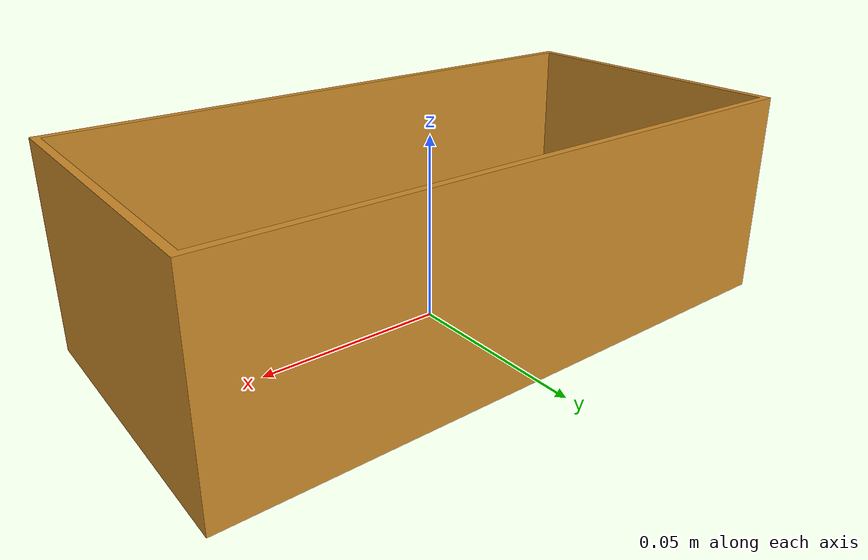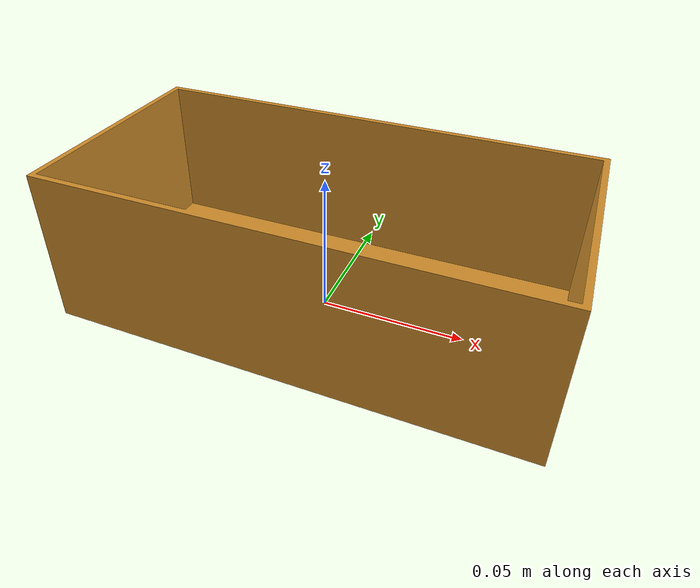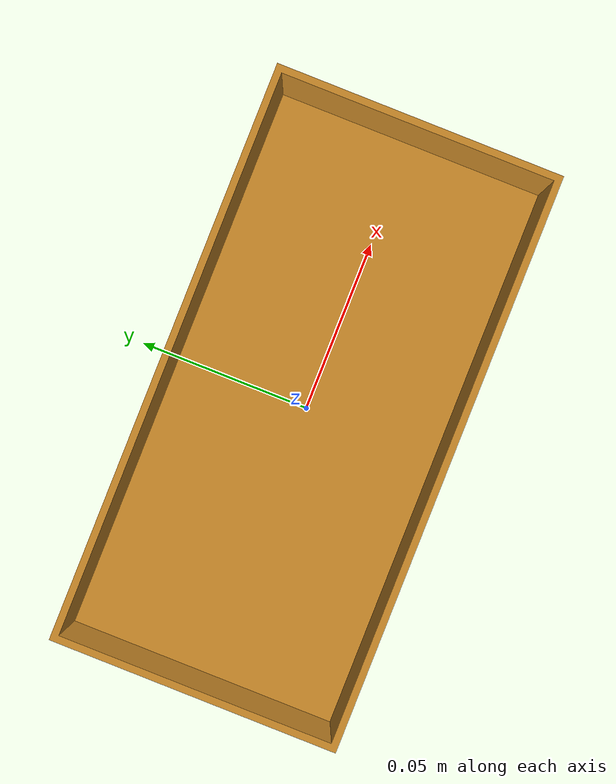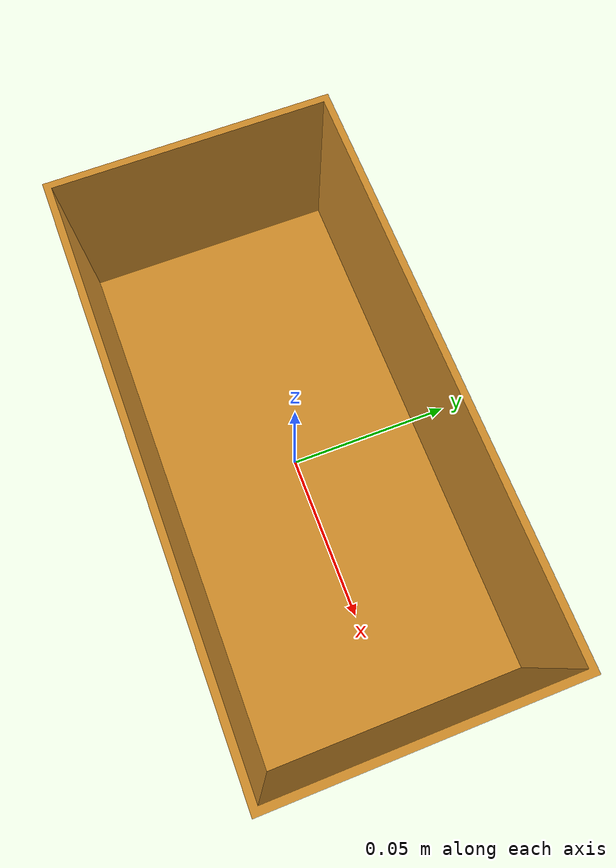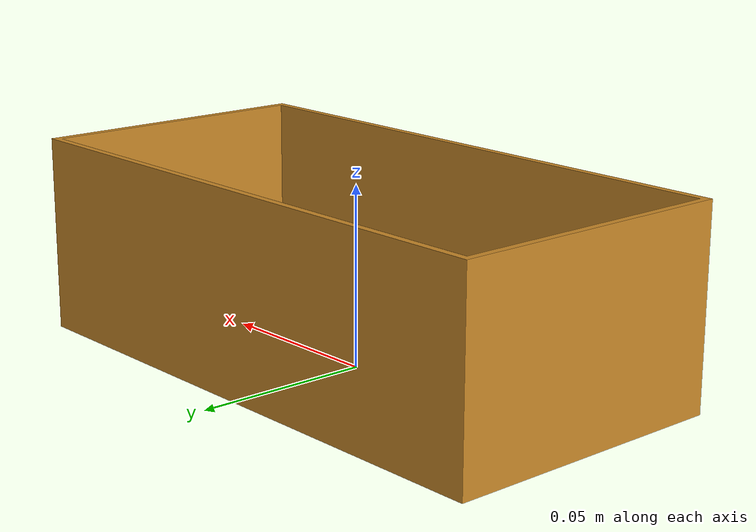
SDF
<?xml version="1.0" ?>
<sdf version="1.5">
  <model name="caisse">
   <pose>0 0 0 0 0 0</pose>
   <link name="caisse_link">
   <!-- center of mass 16.500000 8.200000 5.500000-->
   <!-- Mesh Volume is 78.575951
	Center of Mass is 0.000000 0.000000 1.902955-->
     <pose>0 0 0 0 -0 0</pose>
      <inertial>
        <pose>0 0 0.027500 0 -0 0</pose>
        <mass>0.01</mass>
        <inertia>
          <ixx>0.00001050106934</ixx>
          <ixy>0</ixy>
          <ixz>0</ixz>
          <iyy>0.00002760795166</iyy>
          <iyz>-0</iyz>
          <izz>0.00003301207520</izz>
        </inertia>
      </inertial>
      <collision name="caisse_collision">
        <pose frame=''>0 0 0 0 -0 0</pose>
        <geometry>
          <mesh>
            <uri>/home/rhosane/.gazebo/models/caisse/meshes/caisse.stl</uri>
            <scale>0.01 0.01 0.01</scale>
          </mesh>
        </geometry>
        <surface>
          <friction>
            <ode>
              <mu>1000</mu>
              <mu2>500</mu2>
              <fdir1>0 0 1</fdir1>
              <slip1>0.0</slip1>
              <slip2>0.0</slip2>
            </ode>
          </friction>
          <contact>
            <ode>
              <kp>100000.000000</kp>
              <kd>10.00000</kd>
              <max_vel>2.000000</max_vel>
              <min_depth>0.0001</min_depth>
            </ode>
          </contact>
        </surface>
      </collision>
      <visual name="caisse_visual">
        <pose>0 0 0 0 0 0</pose>
        <geometry>
          <mesh>
            <uri>/home/rhosane/.gazebo/models/caisse/meshes/caisse.stl</uri>
            <scale>0.01 0.01 0.01</scale>
          </mesh>
        </geometry>
        <material>
           <ambient>0.8 0.544 0.16 1</ambient>
           <diffuse>0.8 0.544 0.16 1</diffuse>
           <specular>0 0 0 1</specular>
           <emissive>0.1 0.1 0.1 1</emissive>
        </material>
      </visual>
    </link>
  </model>
</sdf>
